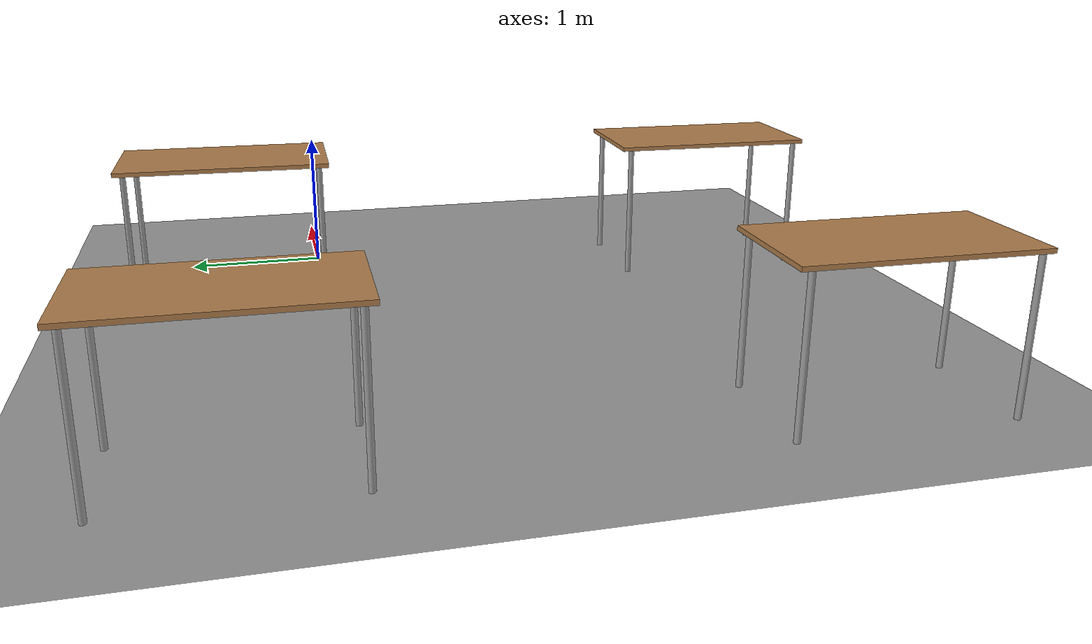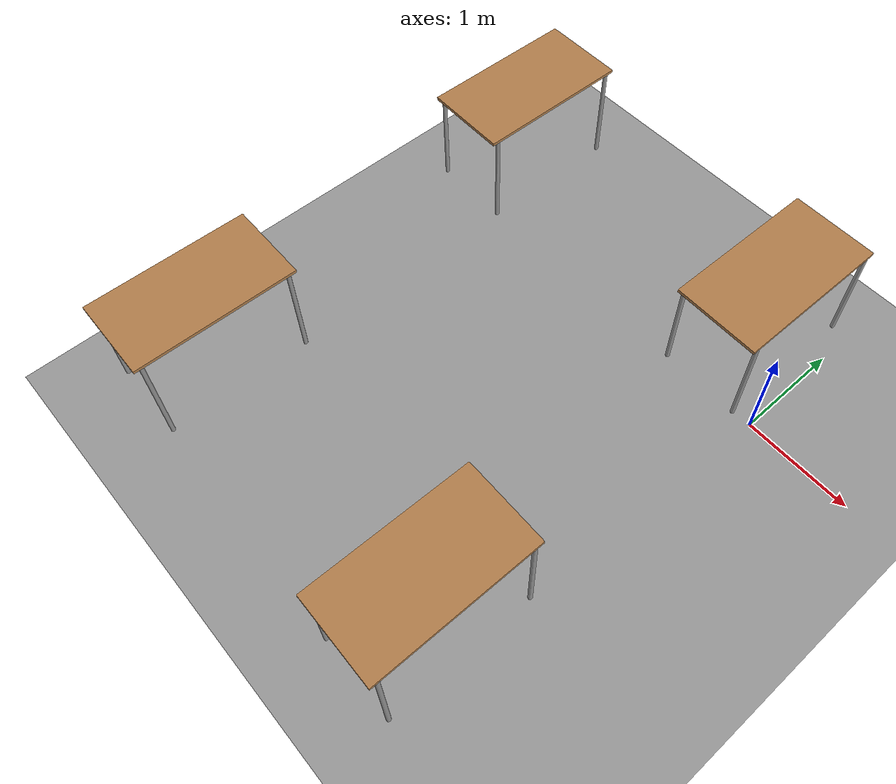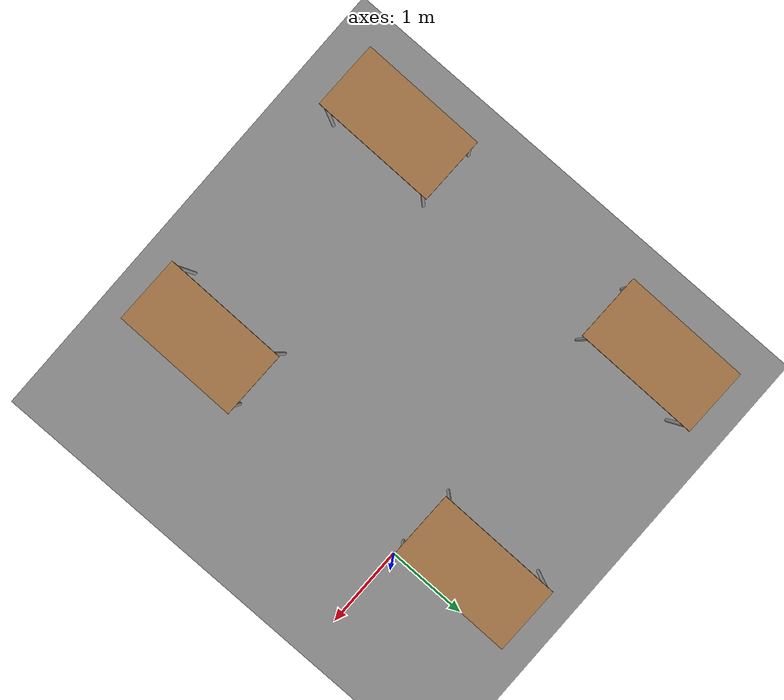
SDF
<sdf version="1.6">
 <world name="default">
  <light name="sun" type="directional">
   <pose>0 0 10 0 -0 0</pose>
   <diffuse>0.8 0.8 0.8 1</diffuse>
   <specular>0.2 0.2 0.2 1</specular>
   <attenuation>
    <range>1000</range>
    <constant>0.9</constant>
    <linear>0.01</linear>
    <quadratic>0.001</quadratic>
   </attenuation>
   <direction>0.5 0.1 -0.9</direction>
  </light>
  <scene><ambient>0.4 0.4 0.4 1</ambient><background>0.7 0.7 0.7 1</background><shadows>1</shadows></scene>
  <physics name="default_physics" default="0" type="ode">
   <max_step_size>0.01</max_step_size>
   <real_time_factor>1</real_time_factor>
   <real_time_update_rate>100</real_time_update_rate>
  </physics>
  <model name="ground_plane_0">
   <static>1</static>
   <link name="link">
    <collision name="collision">
     <geometry><plane><normal>0 0 1</normal><size>100 100</size></plane></geometry>
     <surface><friction><ode><mu>100</mu><mu2>50</mu2></ode></friction></surface>
    </collision>
    <visual name="visual">
     <cast_shadows>0</cast_shadows>
     <geometry><plane><normal>0 0 1</normal><size>100 100</size></plane></geometry>
     <material>
      <script><uri>file://media/materials/scripts/gazebo.material</uri><name>Gazebo/Grey</name></script>
     </material>
    </visual>
    <velocity_decay><linear>0</linear><angular>0</angular></velocity_decay>
   </link>
   <pose>0.497681 0 0 0 -0 0</pose>
  </model>
  <gravity>0 0 -9.8</gravity>
  <magnetic_field>6e-06 2.3e-05 -4.2e-05</magnetic_field>
  <atmosphere type="adiabatic"/>
  <spherical_coordinates>
   <surface_model>EARTH_WGS84</surface_model>
   <latitude_deg>0</latitude_deg>
   <longitude_deg>0</longitude_deg>
   <elevation>0</elevation>
   <heading_deg>0</heading_deg>
  </spherical_coordinates>
  <model name="table_clone_1">
   <static>1</static>
   <link name="link">
    <collision name="surface">
     <pose>0 0 1 0 -0 0</pose>
     <geometry><box><size>1.5 0.8 0.03</size></box></geometry>
     <surface><friction><ode><mu>0.6</mu><mu2>0.6</mu2></ode></friction></surface>
    </collision>
    <visual name="visual1">
     <pose>0 0 1 0 -0 0</pose>
     <geometry><box><size>1.5 0.8 0.03</size></box></geometry>
     <material>
      <script><uri>file://media/materials/scripts/gazebo.material</uri><name>Gazebo/Wood</name></script>
     </material>
    </visual>
    <collision name="front_left_leg">
     <pose>0.68 0.38 0.5 0 -0 0</pose>
     <geometry><cylinder><radius>0.02</radius><length>1</length></cylinder></geometry>
    </collision>
    <visual name="front_left_leg">
     <pose>0.68 0.38 0.5 0 -0 0</pose>
     <geometry><cylinder><radius>0.02</radius><length>1</length></cylinder></geometry>
     <material>
      <script><uri>file://media/materials/scripts/gazebo.material</uri><name>Gazebo/Grey</name></script>
     </material>
    </visual>
    <collision name="front_right_leg">
     <pose>0.68 -0.38 0.5 0 -0 0</pose>
     <geometry><cylinder><radius>0.02</radius><length>1</length></cylinder></geometry>
    </collision>
    <visual name="front_right_leg">
     <pose>0.68 -0.38 0.5 0 -0 0</pose>
     <geometry><cylinder><radius>0.02</radius><length>1</length></cylinder></geometry>
     <material>
      <script><uri>file://media/materials/scripts/gazebo.material</uri><name>Gazebo/Grey</name></script>
     </material>
    </visual>
    <collision name="back_right_leg">
     <pose>-0.68 -0.38 0.5 0 -0 0</pose>
     <geometry><cylinder><radius>0.02</radius><length>1</length></cylinder></geometry>
    </collision>
    <visual name="back_right_leg">
     <pose>-0.68 -0.38 0.5 0 -0 0</pose>
     <geometry><cylinder><radius>0.02</radius><length>1</length></cylinder></geometry>
     <material>
      <script><uri>file://media/materials/scripts/gazebo.material</uri><name>Gazebo/Grey</name></script>
     </material>
    </visual>
    <collision name="back_left_leg">
     <pose>-0.68 0.38 0.5 0 -0 0</pose>
     <geometry><cylinder><radius>0.02</radius><length>1</length></cylinder></geometry>
    </collision>
    <visual name="back_left_leg">
     <pose>-0.68 0.38 0.5 0 -0 0</pose>
     <geometry><cylinder><radius>0.02</radius><length>1</length></cylinder></geometry>
     <material>
      <script><uri>file://media/materials/scripts/gazebo.material</uri><name>Gazebo/Grey</name></script>
     </material>
    </visual>
   </link>
   <pose>-3.57392 -2.99947 0 0 0 -1.58382</pose>
  </model>
  <model name="table_clone_1_clone">
   <static>1</static>
   <link name="link">
    <collision name="surface">
     <pose>0 0 1 0 -0 0</pose>
     <geometry><box><size>1.5 0.8 0.03</size></box></geometry>
     <surface><friction><ode><mu>0.6</mu><mu2>0.6</mu2></ode></friction></surface>
    </collision>
    <visual name="visual1">
     <pose>0 0 1 0 -0 0</pose>
     <geometry><box><size>1.5 0.8 0.03</size></box></geometry>
     <material>
      <script><uri>file://media/materials/scripts/gazebo.material</uri><name>Gazebo/Wood</name></script>
     </material>
    </visual>
    <collision name="front_left_leg">
     <pose>0.68 0.38 0.5 0 -0 0</pose>
     <geometry><cylinder><radius>0.02</radius><length>1</length></cylinder></geometry>
    </collision>
    <visual name="front_left_leg">
     <pose>0.68 0.38 0.5 0 -0 0</pose>
     <geometry><cylinder><radius>0.02</radius><length>1</length></cylinder></geometry>
     <material>
      <script><uri>file://media/materials/scripts/gazebo.material</uri><name>Gazebo/Grey</name></script>
     </material>
    </visual>
    <collision name="front_right_leg">
     <pose>0.68 -0.38 0.5 0 -0 0</pose>
     <geometry><cylinder><radius>0.02</radius><length>1</length></cylinder></geometry>
    </collision>
    <visual name="front_right_leg">
     <pose>0.68 -0.38 0.5 0 -0 0</pose>
     <geometry><cylinder><radius>0.02</radius><length>1</length></cylinder></geometry>
     <material>
      <script><uri>file://media/materials/scripts/gazebo.material</uri><name>Gazebo/Grey</name></script>
     </material>
    </visual>
    <collision name="back_right_leg">
     <pose>-0.68 -0.38 0.5 0 -0 0</pose>
     <geometry><cylinder><radius>0.02</radius><length>1</length></cylinder></geometry>
    </collision>
    <visual name="back_right_leg">
     <pose>-0.68 -0.38 0.5 0 -0 0</pose>
     <geometry><cylinder><radius>0.02</radius><length>1</length></cylinder></geometry>
     <material>
      <script><uri>file://media/materials/scripts/gazebo.material</uri><name>Gazebo/Grey</name></script>
     </material>
    </visual>
    <collision name="back_left_leg">
     <pose>-0.68 0.38 0.5 0 -0 0</pose>
     <geometry><cylinder><radius>0.02</radius><length>1</length></cylinder></geometry>
    </collision>
    <visual name="back_left_leg">
     <pose>-0.68 0.38 0.5 0 -0 0</pose>
     <geometry><cylinder><radius>0.02</radius><length>1</length></cylinder></geometry>
     <material>
      <script><uri>file://media/materials/scripts/gazebo.material</uri><name>Gazebo/Grey</name></script>
     </material>
    </visual>
   </link>
   <pose>-3.55274 0.658733 0 0 0 -1.58382</pose>
  </model>
  <model name="table_clone_1_clone_0">
   <static>1</static>
   <link name="link">
    <collision name="surface">
     <pose>0 0 1 0 -0 0</pose>
     <geometry><box><size>1.5 0.8 0.03</size></box></geometry>
     <surface><friction><ode><mu>0.6</mu><mu2>0.6</mu2></ode></friction></surface>
    </collision>
    <visual name="visual1">
     <pose>0 0 1 0 -0 0</pose>
     <geometry><box><size>1.5 0.8 0.03</size></box></geometry>
     <material>
      <script><uri>file://media/materials/scripts/gazebo.material</uri><name>Gazebo/Wood</name></script>
     </material>
    </visual>
    <collision name="front_left_leg">
     <pose>0.68 0.38 0.5 0 -0 0</pose>
     <geometry><cylinder><radius>0.02</radius><length>1</length></cylinder></geometry>
    </collision>
    <visual name="front_left_leg">
     <pose>0.68 0.38 0.5 0 -0 0</pose>
     <geometry><cylinder><radius>0.02</radius><length>1</length></cylinder></geometry>
     <material>
      <script><uri>file://media/materials/scripts/gazebo.material</uri><name>Gazebo/Grey</name></script>
     </material>
    </visual>
    <collision name="front_right_leg">
     <pose>0.68 -0.38 0.5 0 -0 0</pose>
     <geometry><cylinder><radius>0.02</radius><length>1</length></cylinder></geometry>
    </collision>
    <visual name="front_right_leg">
     <pose>0.68 -0.38 0.5 0 -0 0</pose>
     <geometry><cylinder><radius>0.02</radius><length>1</length></cylinder></geometry>
     <material>
      <script><uri>file://media/materials/scripts/gazebo.material</uri><name>Gazebo/Grey</name></script>
     </material>
    </visual>
    <collision name="back_right_leg">
     <pose>-0.68 -0.38 0.5 0 -0 0</pose>
     <geometry><cylinder><radius>0.02</radius><length>1</length></cylinder></geometry>
    </collision>
    <visual name="back_right_leg">
     <pose>-0.68 -0.38 0.5 0 -0 0</pose>
     <geometry><cylinder><radius>0.02</radius><length>1</length></cylinder></geometry>
     <material>
      <script><uri>file://media/materials/scripts/gazebo.material</uri><name>Gazebo/Grey</name></script>
     </material>
    </visual>
    <collision name="back_left_leg">
     <pose>-0.68 0.38 0.5 0 -0 0</pose>
     <geometry><cylinder><radius>0.02</radius><length>1</length></cylinder></geometry>
    </collision>
    <visual name="back_left_leg">
     <pose>-0.68 0.38 0.5 0 -0 0</pose>
     <geometry><cylinder><radius>0.02</radius><length>1</length></cylinder></geometry>
     <material>
      <script><uri>file://media/materials/scripts/gazebo.material</uri><name>Gazebo/Grey</name></script>
     </material>
    </visual>
   </link>
   <pose>-0.530233 -3.08873 0 0 0 -1.58382</pose>
  </model>
  <model name="table_clone_1_clone_1">
   <static>1</static>
   <link name="link">
    <collision name="surface">
     <pose>0 0 1 0 -0 0</pose>
     <geometry><box><size>1.5 0.8 0.03</size></box></geometry>
     <surface><friction><ode><mu>0.6</mu><mu2>0.6</mu2></ode></friction></surface>
    </collision>
    <visual name="visual1">
     <pose>0 0 1 0 -0 0</pose>
     <geometry><box><size>1.5 0.8 0.03</size></box></geometry>
     <material>
      <script><uri>file://media/materials/scripts/gazebo.material</uri><name>Gazebo/Wood</name></script>
     </material>
    </visual>
    <collision name="front_left_leg">
     <pose>0.68 0.38 0.5 0 -0 0</pose>
     <geometry><cylinder><radius>0.02</radius><length>1</length></cylinder></geometry>
    </collision>
    <visual name="front_left_leg">
     <pose>0.68 0.38 0.5 0 -0 0</pose>
     <geometry><cylinder><radius>0.02</radius><length>1</length></cylinder></geometry>
     <material>
      <script><uri>file://media/materials/scripts/gazebo.material</uri><name>Gazebo/Grey</name></script>
     </material>
    </visual>
    <collision name="front_right_leg">
     <pose>0.68 -0.38 0.5 0 -0 0</pose>
     <geometry><cylinder><radius>0.02</radius><length>1</length></cylinder></geometry>
    </collision>
    <visual name="front_right_leg">
     <pose>0.68 -0.38 0.5 0 -0 0</pose>
     <geometry><cylinder><radius>0.02</radius><length>1</length></cylinder></geometry>
     <material>
      <script><uri>file://media/materials/scripts/gazebo.material</uri><name>Gazebo/Grey</name></script>
     </material>
    </visual>
    <collision name="back_right_leg">
     <pose>-0.68 -0.38 0.5 0 -0 0</pose>
     <geometry><cylinder><radius>0.02</radius><length>1</length></cylinder></geometry>
    </collision>
    <visual name="back_right_leg">
     <pose>-0.68 -0.38 0.5 0 -0 0</pose>
     <geometry><cylinder><radius>0.02</radius><length>1</length></cylinder></geometry>
     <material>
      <script><uri>file://media/materials/scripts/gazebo.material</uri><name>Gazebo/Grey</name></script>
     </material>
    </visual>
    <collision name="back_left_leg">
     <pose>-0.68 0.38 0.5 0 -0 0</pose>
     <geometry><cylinder><radius>0.02</radius><length>1</length></cylinder></geometry>
    </collision>
    <visual name="back_left_leg">
     <pose>-0.68 0.38 0.5 0 -0 0</pose>
     <geometry><cylinder><radius>0.02</radius><length>1</length></cylinder></geometry>
     <material>
      <script><uri>file://media/materials/scripts/gazebo.material</uri><name>Gazebo/Grey</name></script>
     </material>
    </visual>
   </link>
   <pose>-0.556262 0.676452 0 0 0 -1.58382</pose>
  </model>
 </world>
</sdf>
